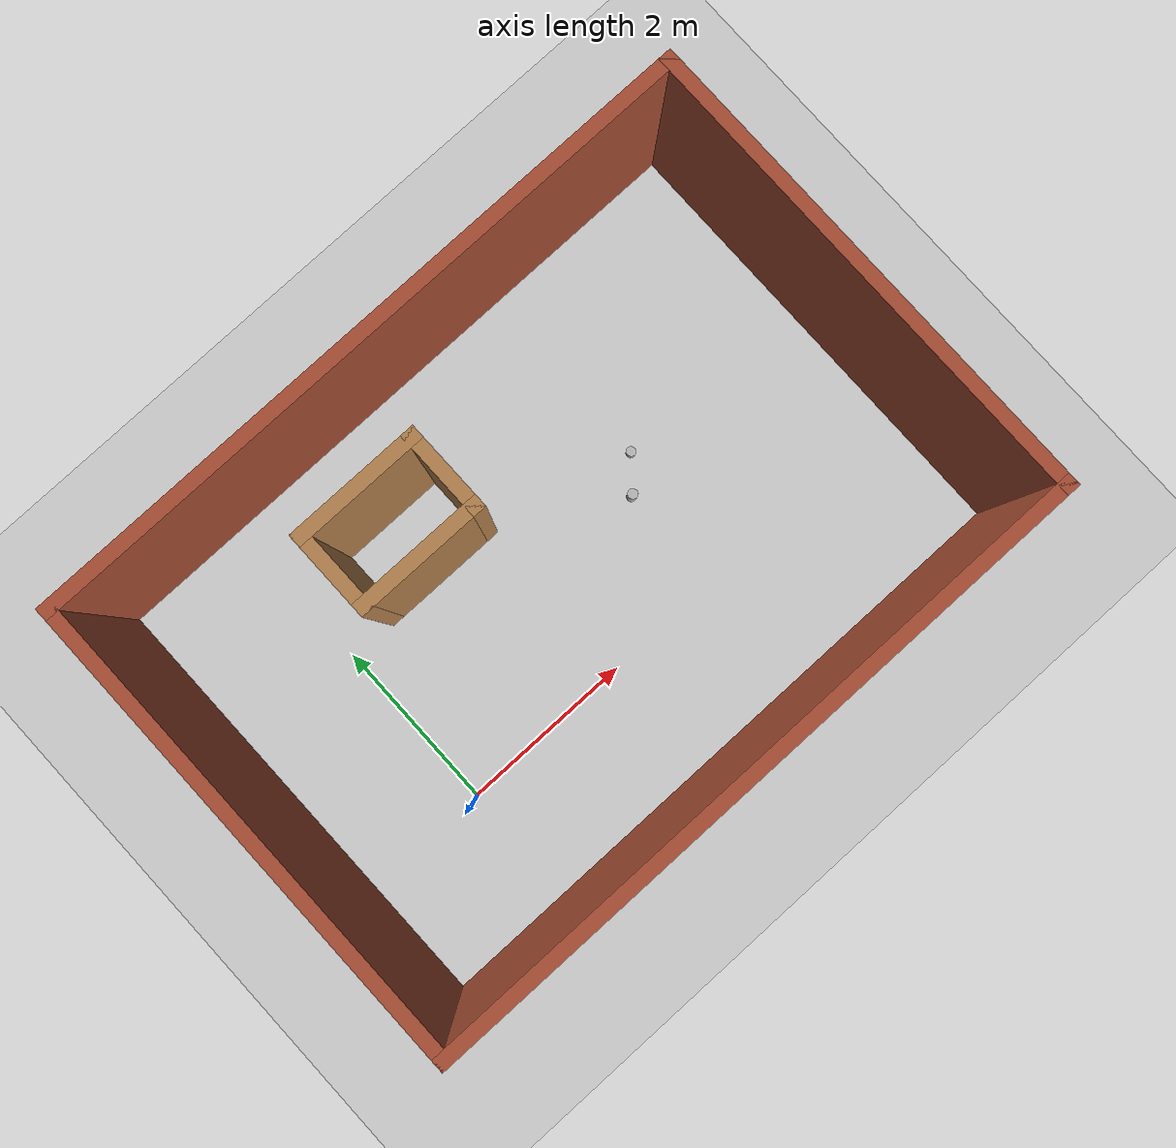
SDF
<sdf version="1.6">
 <world name="default">
  <light name="sun" type="directional">
   <pose>0 0 10 0 -0 0</pose>
   <diffuse>0.8 0.8 0.8 1</diffuse>
   <specular>0.2 0.2 0.2 1</specular>
   <attenuation>
    <range>1000</range>
    <constant>0.9</constant>
    <linear>0.01</linear>
    <quadratic>0.001</quadratic>
   </attenuation>
   <direction>-0.5 0.1 -0.9</direction>
  </light>
  <model name="ground_plane">
   <static>1</static>
   <link name="link">
    <collision name="collision">
     <geometry><plane><normal>0 0 1</normal><size>100 100</size></plane></geometry>
     <surface><friction><ode><mu>100</mu><mu2>50</mu2></ode></friction></surface>
    </collision>
    <visual name="visual">
     <cast_shadows>0</cast_shadows>
     <geometry><plane><normal>0 0 1</normal><size>100 100</size></plane></geometry>
     <material>
      <script><uri>file://media/materials/scripts/gazebo.material</uri><name>Gazebo/Grey</name></script>
     </material>
    </visual>
   </link>
  </model>
  <gravity>0 0 -9.8</gravity>
  <magnetic_field>6e-06 2.3e-05 -4.2e-05</magnetic_field>
  <atmosphere type="adiabatic"/>
  <physics name="default_physics" default="0" type="ode">
   <max_step_size>0.001</max_step_size>
   <real_time_factor>1</real_time_factor>
   <real_time_update_rate>1000</real_time_update_rate>
  </physics>
  <scene><ambient>0.4 0.4 0.4 1</ambient><background>0.7 0.7 0.7 1</background><shadows>1</shadows></scene>
  <audio><device>default</device></audio>
  <spherical_coordinates>
   <surface_model>EARTH_WGS84</surface_model>
   <latitude_deg>0</latitude_deg>
   <longitude_deg>0</longitude_deg>
   <elevation>0</elevation>
   <heading_deg>0</heading_deg>
  </spherical_coordinates>
  <model name="HRI_lab">
   <pose>2.28185 1.22165 0 0 -0 0</pose>
   <link name="Wall_0">
    <collision name="Wall_0_Collision">
     <geometry><box><size>5.5 0.15 2.5</size></box></geometry>
     <pose>0 0 1.25 0 -0 0</pose>
    </collision>
    <visual name="Wall_0_Visual">
     <pose>0 0 1.25 0 -0 0</pose>
     <geometry><box><size>5.5 0.15 2.5</size></box></geometry>
     <material>
      <script><uri>file://media/materials/scripts/gazebo.material</uri><name>Gazebo/Bricks</name></script>
      <ambient>1 1 1 1</ambient>
     </material>
     <meta><layer>0</layer></meta>
    </visual>
    <pose>-3.8 0 0 0 -0 1.5708</pose>
   </link>
   <link name="Wall_10">
    <collision name="Wall_10_Collision">
     <geometry><box><size>1 0.15 2.5</size></box></geometry>
     <pose>0 0 1.25 0 -0 0</pose>
    </collision>
    <visual name="Wall_10_Visual">
     <pose>0 0 1.25 0 -0 0</pose>
     <geometry><box><size>1 0.15 2.5</size></box></geometry>
     <material>
      <script><uri>file://media/materials/scripts/gazebo.material</uri><name>Gazebo/Wood</name></script>
      <ambient>1 1 1 1</ambient>
     </material>
     <meta><layer>0</layer></meta>
    </visual>
    <pose>-1.66966 1.22023 0 0 -0 -1.5708</pose>
   </link>
   <link name="Wall_11">
    <collision name="Wall_11_Collision">
     <geometry><box><size>1.5 0.15 2.5</size></box></geometry>
     <pose>0 0 1.25 0 -0 0</pose>
    </collision>
    <visual name="Wall_11_Visual">
     <pose>0 0 1.25 0 -0 0</pose>
     <geometry><box><size>1.5 0.15 2.5</size></box></geometry>
     <material>
      <script><uri>file://media/materials/scripts/gazebo.material</uri><name>Gazebo/Wood</name></script>
      <ambient>1 1 1 1</ambient>
     </material>
     <meta><layer>0</layer></meta>
    </visual>
    <pose>-0.99466 0.795231 0 0 -0 0</pose>
   </link>
   <link name="Wall_12">
    <collision name="Wall_12_Collision">
     <geometry><box><size>1 0.15 2.5</size></box></geometry>
     <pose>0 0 1.25 0 -0 0</pose>
    </collision>
    <visual name="Wall_12_Visual">
     <pose>0 0 1.25 0 -0 0</pose>
     <geometry><box><size>1 0.15 2.5</size></box></geometry>
     <material>
      <script><uri>file://media/materials/scripts/gazebo.material</uri><name>Gazebo/Wood</name></script>
      <ambient>1 1 1 1</ambient>
     </material>
     <meta><layer>0</layer></meta>
    </visual>
    <pose>-0.31966 1.22023 0 0 -0 1.5708</pose>
   </link>
   <link name="Wall_13">
    <collision name="Wall_13_Collision">
     <geometry><box><size>1.5 0.15 2.5</size></box></geometry>
     <pose>0 0 1.25 0 -0 0</pose>
    </collision>
    <visual name="Wall_13_Visual">
     <pose>0 0 1.25 0 -0 0</pose>
     <geometry><box><size>1.5 0.15 2.5</size></box></geometry>
     <material>
      <script><uri>file://media/materials/scripts/gazebo.material</uri><name>Gazebo/Wood</name></script>
      <ambient>1 1 1 1</ambient>
     </material>
     <meta><layer>0</layer></meta>
    </visual>
    <pose>-0.99466 1.64523 0 0 -0 3.14159</pose>
   </link>
   <link name="Wall_6">
    <collision name="Wall_6_Collision">
     <geometry><box><size>7.75 0.15 2.5</size></box></geometry>
     <pose>0 0 1.25 0 -0 0</pose>
    </collision>
    <visual name="Wall_6_Visual">
     <pose>0 0 1.25 0 -0 0</pose>
     <geometry><box><size>7.75 0.15 2.5</size></box></geometry>
     <material>
      <script><uri>file://media/materials/scripts/gazebo.material</uri><name>Gazebo/Bricks</name></script>
      <ambient>1 1 1 1</ambient>
     </material>
     <meta><layer>0</layer></meta>
    </visual>
    <pose>0 2.675 0 0 -0 0</pose>
   </link>
   <link name="Wall_7">
    <collision name="Wall_7_Collision">
     <geometry><box><size>5.5 0.15 2.5</size></box></geometry>
     <pose>0 0 1.25 0 -0 0</pose>
    </collision>
    <visual name="Wall_7_Visual">
     <pose>0 0 1.25 0 -0 0</pose>
     <geometry><box><size>5.5 0.15 2.5</size></box></geometry>
     <material>
      <script><uri>file://media/materials/scripts/gazebo.material</uri><name>Gazebo/Bricks</name></script>
      <ambient>1 1 1 1</ambient>
     </material>
     <meta><layer>0</layer></meta>
    </visual>
    <pose>3.8 0 0 0 -0 -1.5708</pose>
   </link>
   <link name="Wall_8">
    <collision name="Wall_8_Collision">
     <geometry><box><size>7.75 0.15 2.5</size></box></geometry>
     <pose>0 0 1.25 0 -0 0</pose>
    </collision>
    <visual name="Wall_8_Visual">
     <pose>0 0 1.25 0 -0 0</pose>
     <geometry><box><size>7.75 0.15 2.5</size></box></geometry>
     <material>
      <script><uri>file://media/materials/scripts/gazebo.material</uri><name>Gazebo/Bricks</name></script>
      <ambient>1 1 1 1</ambient>
     </material>
     <meta><layer>0</layer></meta>
    </visual>
    <pose>0 -2.675 0 0 -0 3.14159</pose>
   </link>
   <static>1</static>
  </model>
  <model name="cafe_table">
   <static>1</static>
   <link name="link">
    <collision name="surface">
     <pose>3.68 1.62 0.4565 0 -0 0</pose>
     <geometry><box><size>0.913 0.913 0.04</size></box></geometry>
    </collision>
    <collision name="column">
     <pose>0 0 0.37 0 -0 0</pose>
     <geometry><box><size>0.042 0.042 0.74</size></box></geometry>
    </collision>
    <collision name="base">
     <pose>0 0 0.02 0 -0 0</pose>
     <geometry><box><size>0.9 0.9 0.8</size></box></geometry>
    </collision>
    <visual name="visual">
     <geometry><cylinder><radius>0.055</radius><length>0.23</length></cylinder></geometry>
     <material>
      <script>
       <uri>model://beer/materials/scripts</uri>
       <uri>model://beer/materials/textures</uri>
       <name>Beer/Diffuse</name>
      </script>
     </material>
    </visual>
   </link>
   <pose>3.68 1.62 0 0 -0 0</pose>
  </model>
  <model name="beer">
   <link name="link">
    <inertial>
     <mass>0.39</mass>
     <inertia><ixx>0.00058</ixx><ixy>0</ixy><ixz>0</ixz><iyy>0.00058</iyy><iyz>0</iyz><izz>0.00019</izz></inertia>
    </inertial>
    <collision name="collision">
     <geometry><cylinder><radius>0.055</radius><length>0.23</length></cylinder></geometry>
    </collision>
    <visual name="visual">
     <geometry><cylinder><radius>0.055</radius><length>0.23</length></cylinder></geometry>
     <material>
      <script>
       <uri>model://beer/materials/scripts</uri>
       <uri>model://beer/materials/textures</uri>
       <name>Beer/Diffuse</name>
      </script>
     </material>
    </visual>
   </link>
   <pose>3.28 1.22 0.855 0 -0 0</pose>
  </model>
 </world>
</sdf>
